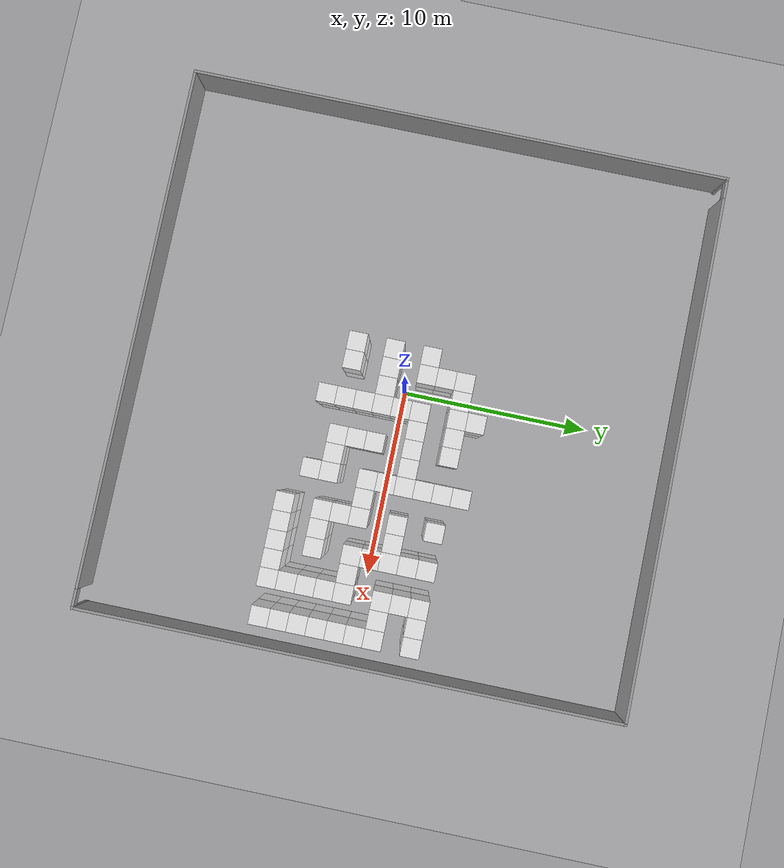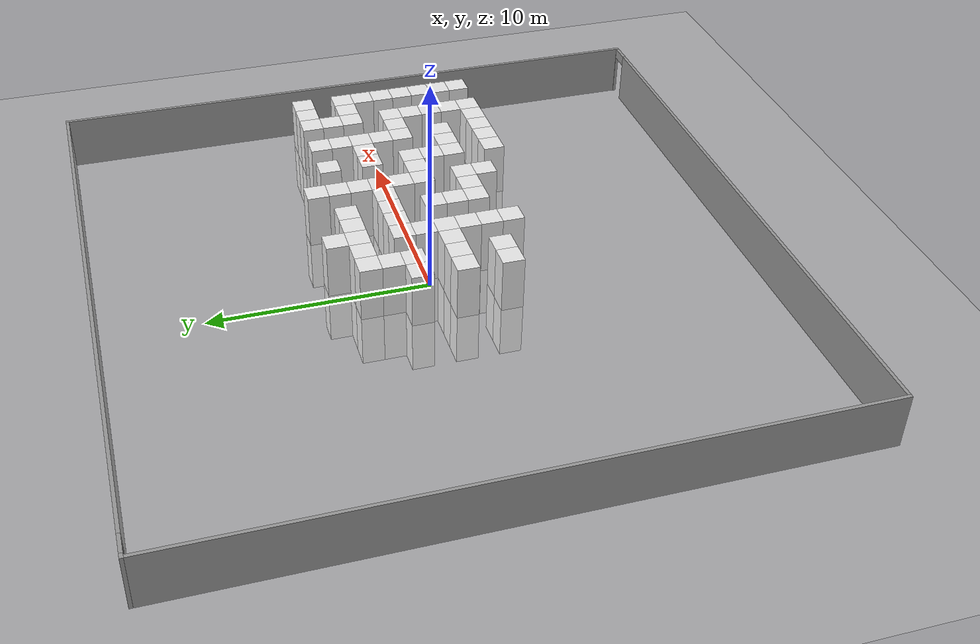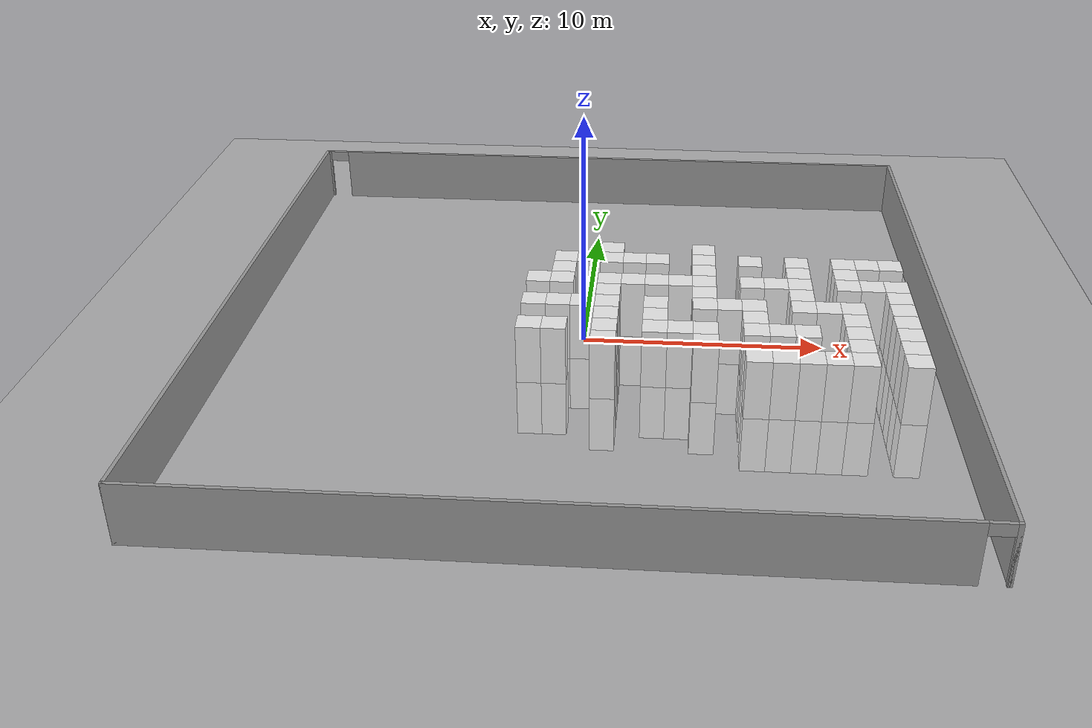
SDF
<sdf version="1.6">
 <world name="default">
  <model name="ground_plane">
   <static>1</static>
   <link name="link">
    <collision name="collision">
     <geometry><plane><normal>0 0 1</normal><size>100 100</size></plane></geometry>
     <surface><friction><ode><mu>100</mu><mu2>50</mu2></ode></friction></surface>
    </collision>
    <visual name="visual">
     <cast_shadows>0</cast_shadows>
     <geometry><plane><normal>0 0 1</normal><size>100 100</size></plane></geometry>
     <material>
      <script><uri>file://media/materials/scripts/gazebo.material</uri><name>Gazebo/Grey</name></script>
     </material>
    </visual>
   </link>
  </model>
  <model name="Unit_box_1_4">
   <pose>1 4 0 0 0 0</pose>
   <link name="Unit_box_1_4_collision">
    <collision name="collision"><geometry><box><size>1 1 5</size></box></geometry></collision>
    <visual name="Unit_box_1_4_visual">
     <geometry><box><size>1 1 5</size></box></geometry>
     <material>
      <script><name>Gazebo/White</name><uri>file://media/materials/scripts/gazebo.material</uri></script>
     </material>
    </visual>
   </link>
   <static>1</static>
  </model>
  <model name="Unit_box_5_4">
   <pose>5 4 0 0 0 0</pose>
   <link name="Unit_box_5_4_collision">
    <collision name="collision"><geometry><box><size>1 1 5</size></box></geometry></collision>
    <visual name="Unit_box_5_4_visual">
     <geometry><box><size>1 1 5</size></box></geometry>
     <material>
      <script><name>Gazebo/White</name><uri>file://media/materials/scripts/gazebo.material</uri></script>
     </material>
    </visual>
   </link>
   <static>1</static>
  </model>
  <model name="Unit_box_-1_3">
   <pose>-1 3 0 0 0 0</pose>
   <link name="Unit_box_-1_3_collision">
    <collision name="collision"><geometry><box><size>1 1 5</size></box></geometry></collision>
    <visual name="Unit_box_-1_3_visual">
     <geometry><box><size>1 1 5</size></box></geometry>
     <material>
      <script><name>Gazebo/White</name><uri>file://media/materials/scripts/gazebo.material</uri></script>
     </material>
    </visual>
   </link>
   <static>1</static>
  </model>
  <model name="Unit_box_0_3">
   <pose>0 3 0 0 0 0</pose>
   <link name="Unit_box_0_3_collision">
    <collision name="collision"><geometry><box><size>1 1 5</size></box></geometry></collision>
    <visual name="Unit_box_0_3_visual">
     <geometry><box><size>1 1 5</size></box></geometry>
     <material>
      <script><name>Gazebo/White</name><uri>file://media/materials/scripts/gazebo.material</uri></script>
     </material>
    </visual>
   </link>
   <static>1</static>
  </model>
  <model name="Unit_box_1_3">
   <pose>1 3 0 0 0 0</pose>
   <link name="Unit_box_1_3_collision">
    <collision name="collision"><geometry><box><size>1 1 5</size></box></geometry></collision>
    <visual name="Unit_box_1_3_visual">
     <geometry><box><size>1 1 5</size></box></geometry>
     <material>
      <script><name>Gazebo/White</name><uri>file://media/materials/scripts/gazebo.material</uri></script>
     </material>
    </visual>
   </link>
   <static>1</static>
  </model>
  <model name="Unit_box_2_3">
   <pose>2 3 0 0 0 0</pose>
   <link name="Unit_box_2_3_collision">
    <collision name="collision"><geometry><box><size>1 1 5</size></box></geometry></collision>
    <visual name="Unit_box_2_3_visual">
     <geometry><box><size>1 1 5</size></box></geometry>
     <material>
      <script><name>Gazebo/White</name><uri>file://media/materials/scripts/gazebo.material</uri></script>
     </material>
    </visual>
   </link>
   <static>1</static>
  </model>
  <model name="Unit_box_3_3">
   <pose>3 3 0 0 0 0</pose>
   <link name="Unit_box_3_3_collision">
    <collision name="collision"><geometry><box><size>1 1 5</size></box></geometry></collision>
    <visual name="Unit_box_3_3_visual">
     <geometry><box><size>1 1 5</size></box></geometry>
     <material>
      <script><name>Gazebo/White</name><uri>file://media/materials/scripts/gazebo.material</uri></script>
     </material>
    </visual>
   </link>
   <static>1</static>
  </model>
  <model name="Unit_box_5_3">
   <pose>5 3 0 0 0 0</pose>
   <link name="Unit_box_5_3_collision">
    <collision name="collision"><geometry><box><size>1 1 5</size></box></geometry></collision>
    <visual name="Unit_box_5_3_visual">
     <geometry><box><size>1 1 5</size></box></geometry>
     <material>
      <script><name>Gazebo/White</name><uri>file://media/materials/scripts/gazebo.material</uri></script>
     </material>
    </visual>
   </link>
   <static>1</static>
  </model>
  <model name="Unit_box_7_3">
   <pose>7 3 0 0 0 0</pose>
   <link name="Unit_box_7_3_collision">
    <collision name="collision"><geometry><box><size>1 1 5</size></box></geometry></collision>
    <visual name="Unit_box_7_3_visual">
     <geometry><box><size>1 1 5</size></box></geometry>
     <material>
      <script><name>Gazebo/White</name><uri>file://media/materials/scripts/gazebo.material</uri></script>
     </material>
    </visual>
   </link>
   <static>1</static>
  </model>
  <model name="Unit_box_9_3">
   <pose>9 3 0 0 0 0</pose>
   <link name="Unit_box_9_3_collision">
    <collision name="collision"><geometry><box><size>1 1 5</size></box></geometry></collision>
    <visual name="Unit_box_9_3_visual">
     <geometry><box><size>1 1 5</size></box></geometry>
     <material>
      <script><name>Gazebo/White</name><uri>file://media/materials/scripts/gazebo.material</uri></script>
     </material>
    </visual>
   </link>
   <static>1</static>
  </model>
  <model name="Unit_box_11_3">
   <pose>11 3 0 0 0 0</pose>
   <link name="Unit_box_11_3_collision">
    <collision name="collision"><geometry><box><size>1 1 5</size></box></geometry></collision>
    <visual name="Unit_box_11_3_visual">
     <geometry><box><size>1 1 5</size></box></geometry>
     <material>
      <script><name>Gazebo/White</name><uri>file://media/materials/scripts/gazebo.material</uri></script>
     </material>
    </visual>
   </link>
   <static>1</static>
  </model>
  <model name="Unit_box_12_3">
   <pose>12 3 0 0 0 0</pose>
   <link name="Unit_box_12_3_collision">
    <collision name="collision"><geometry><box><size>1 1 5</size></box></geometry></collision>
    <visual name="Unit_box_12_3_visual">
     <geometry><box><size>1 1 5</size></box></geometry>
     <material>
      <script><name>Gazebo/White</name><uri>file://media/materials/scripts/gazebo.material</uri></script>
     </material>
    </visual>
   </link>
   <static>1</static>
  </model>
  <model name="Unit_box_13_3">
   <pose>13 3 0 0 0 0</pose>
   <link name="Unit_box_13_3_collision">
    <collision name="collision"><geometry><box><size>1 1 5</size></box></geometry></collision>
    <visual name="Unit_box_13_3_visual">
     <geometry><box><size>1 1 5</size></box></geometry>
     <material>
      <script><name>Gazebo/White</name><uri>file://media/materials/scripts/gazebo.material</uri></script>
     </material>
    </visual>
   </link>
   <static>1</static>
  </model>
  <model name="Unit_box_-1_2">
   <pose>-1 2 0 0 0 0</pose>
   <link name="Unit_box_-1_2_collision">
    <collision name="collision"><geometry><box><size>1 1 5</size></box></geometry></collision>
    <visual name="Unit_box_-1_2_visual">
     <geometry><box><size>1 1 5</size></box></geometry>
     <material>
      <script><name>Gazebo/White</name><uri>file://media/materials/scripts/gazebo.material</uri></script>
     </material>
    </visual>
   </link>
   <static>1</static>
  </model>
  <model name="Unit_box_5_2">
   <pose>5 2 0 0 0 0</pose>
   <link name="Unit_box_5_2_collision">
    <collision name="collision"><geometry><box><size>1 1 5</size></box></geometry></collision>
    <visual name="Unit_box_5_2_visual">
     <geometry><box><size>1 1 5</size></box></geometry>
     <material>
      <script><name>Gazebo/White</name><uri>file://media/materials/scripts/gazebo.material</uri></script>
     </material>
    </visual>
   </link>
   <static>1</static>
  </model>
  <model name="Unit_box_9_2">
   <pose>9 2 0 0 0 0</pose>
   <link name="Unit_box_9_2_collision">
    <collision name="collision"><geometry><box><size>1 1 5</size></box></geometry></collision>
    <visual name="Unit_box_9_2_visual">
     <geometry><box><size>1 1 5</size></box></geometry>
     <material>
      <script><name>Gazebo/White</name><uri>file://media/materials/scripts/gazebo.material</uri></script>
     </material>
    </visual>
   </link>
   <static>1</static>
  </model>
  <model name="Unit_box_11_2">
   <pose>11 2 0 0 0 0</pose>
   <link name="Unit_box_11_2_collision">
    <collision name="collision"><geometry><box><size>1 1 5</size></box></geometry></collision>
    <visual name="Unit_box_11_2_visual">
     <geometry><box><size>1 1 5</size></box></geometry>
     <material>
      <script><name>Gazebo/White</name><uri>file://media/materials/scripts/gazebo.material</uri></script>
     </material>
    </visual>
   </link>
   <static>1</static>
  </model>
  <model name="Unit_box_-2_1">
   <pose>-2 1 0 0 0 0</pose>
   <link name="Unit_box_-2_1_collision">
    <collision name="collision"><geometry><box><size>1 1 5</size></box></geometry></collision>
    <visual name="Unit_box_-2_1_visual">
     <geometry><box><size>1 1 5</size></box></geometry>
     <material>
      <script><name>Gazebo/White</name><uri>file://media/materials/scripts/gazebo.material</uri></script>
     </material>
    </visual>
   </link>
   <static>1</static>
  </model>
  <model name="Unit_box_-1_1">
   <pose>-1 1 0 0 0 0</pose>
   <link name="Unit_box_-1_1_collision">
    <collision name="collision"><geometry><box><size>1 1 5</size></box></geometry></collision>
    <visual name="Unit_box_-1_1_visual">
     <geometry><box><size>1 1 5</size></box></geometry>
     <material>
      <script><name>Gazebo/White</name><uri>file://media/materials/scripts/gazebo.material</uri></script>
     </material>
    </visual>
   </link>
   <static>1</static>
  </model>
  <model name="Unit_box_1_1">
   <pose>1 1 0 0 0 0</pose>
   <link name="Unit_box_1_1_collision">
    <collision name="collision"><geometry><box><size>1 1 5</size></box></geometry></collision>
    <visual name="Unit_box_1_1_visual">
     <geometry><box><size>1 1 5</size></box></geometry>
     <material>
      <script><name>Gazebo/White</name><uri>file://media/materials/scripts/gazebo.material</uri></script>
     </material>
    </visual>
   </link>
   <static>1</static>
  </model>
  <model name="Unit_box_2_1">
   <pose>2 1 0 0 0 0</pose>
   <link name="Unit_box_2_1_collision">
    <collision name="collision"><geometry><box><size>1 1 5</size></box></geometry></collision>
    <visual name="Unit_box_2_1_visual">
     <geometry><box><size>1 1 5</size></box></geometry>
     <material>
      <script><name>Gazebo/White</name><uri>file://media/materials/scripts/gazebo.material</uri></script>
     </material>
    </visual>
   </link>
   <static>1</static>
  </model>
  <model name="Unit_box_3_1">
   <pose>3 1 0 0 0 0</pose>
   <link name="Unit_box_3_1_collision">
    <collision name="collision"><geometry><box><size>1 1 5</size></box></geometry></collision>
    <visual name="Unit_box_3_1_visual">
     <geometry><box><size>1 1 5</size></box></geometry>
     <material>
      <script><name>Gazebo/White</name><uri>file://media/materials/scripts/gazebo.material</uri></script>
     </material>
    </visual>
   </link>
   <static>1</static>
  </model>
  <model name="Unit_box_4_1">
   <pose>4 1 0 0 0 0</pose>
   <link name="Unit_box_4_1_collision">
    <collision name="collision"><geometry><box><size>1 1 5</size></box></geometry></collision>
    <visual name="Unit_box_4_1_visual">
     <geometry><box><size>1 1 5</size></box></geometry>
     <material>
      <script><name>Gazebo/White</name><uri>file://media/materials/scripts/gazebo.material</uri></script>
     </material>
    </visual>
   </link>
   <static>1</static>
  </model>
  <model name="Unit_box_5_1">
   <pose>5 1 0 0 0 0</pose>
   <link name="Unit_box_5_1_collision">
    <collision name="collision"><geometry><box><size>1 1 5</size></box></geometry></collision>
    <visual name="Unit_box_5_1_visual">
     <geometry><box><size>1 1 5</size></box></geometry>
     <material>
      <script><name>Gazebo/White</name><uri>file://media/materials/scripts/gazebo.material</uri></script>
     </material>
    </visual>
   </link>
   <static>1</static>
  </model>
  <model name="Unit_box_7_1">
   <pose>7 1 0 0 0 0</pose>
   <link name="Unit_box_7_1_collision">
    <collision name="collision"><geometry><box><size>1 1 5</size></box></geometry></collision>
    <visual name="Unit_box_7_1_visual">
     <geometry><box><size>1 1 5</size></box></geometry>
     <material>
      <script><name>Gazebo/White</name><uri>file://media/materials/scripts/gazebo.material</uri></script>
     </material>
    </visual>
   </link>
   <static>1</static>
  </model>
  <model name="Unit_box_8_1">
   <pose>8 1 0 0 0 0</pose>
   <link name="Unit_box_8_1_collision">
    <collision name="collision"><geometry><box><size>1 1 5</size></box></geometry></collision>
    <visual name="Unit_box_8_1_visual">
     <geometry><box><size>1 1 5</size></box></geometry>
     <material>
      <script><name>Gazebo/White</name><uri>file://media/materials/scripts/gazebo.material</uri></script>
     </material>
    </visual>
   </link>
   <static>1</static>
  </model>
  <model name="Unit_box_9_1">
   <pose>9 1 0 0 0 0</pose>
   <link name="Unit_box_9_1_collision">
    <collision name="collision"><geometry><box><size>1 1 5</size></box></geometry></collision>
    <visual name="Unit_box_9_1_visual">
     <geometry><box><size>1 1 5</size></box></geometry>
     <material>
      <script><name>Gazebo/White</name><uri>file://media/materials/scripts/gazebo.material</uri></script>
     </material>
    </visual>
   </link>
   <static>1</static>
  </model>
  <model name="Unit_box_11_1">
   <pose>11 1 0 0 0 0</pose>
   <link name="Unit_box_11_1_collision">
    <collision name="collision"><geometry><box><size>1 1 5</size></box></geometry></collision>
    <visual name="Unit_box_11_1_visual">
     <geometry><box><size>1 1 5</size></box></geometry>
     <material>
      <script><name>Gazebo/White</name><uri>file://media/materials/scripts/gazebo.material</uri></script>
     </material>
    </visual>
   </link>
   <static>1</static>
  </model>
  <model name="Unit_box_12_1">
   <pose>12 1 0 0 0 0</pose>
   <link name="Unit_box_12_1_collision">
    <collision name="collision"><geometry><box><size>1 1 5</size></box></geometry></collision>
    <visual name="Unit_box_12_1_visual">
     <geometry><box><size>1 1 5</size></box></geometry>
     <material>
      <script><name>Gazebo/White</name><uri>file://media/materials/scripts/gazebo.material</uri></script>
     </material>
    </visual>
   </link>
   <static>1</static>
  </model>
  <model name="Unit_box_13_1">
   <pose>13 1 0 0 0 0</pose>
   <link name="Unit_box_13_1_collision">
    <collision name="collision"><geometry><box><size>1 1 5</size></box></geometry></collision>
    <visual name="Unit_box_13_1_visual">
     <geometry><box><size>1 1 5</size></box></geometry>
     <material>
      <script><name>Gazebo/White</name><uri>file://media/materials/scripts/gazebo.material</uri></script>
     </material>
    </visual>
   </link>
   <static>1</static>
  </model>
  <model name="Unit_box_1_0">
   <pose>1 0 0 0 0 0</pose>
   <link name="Unit_box_1_0_collision">
    <collision name="collision"><geometry><box><size>1 1 5</size></box></geometry></collision>
    <visual name="Unit_box_1_0_visual">
     <geometry><box><size>1 1 5</size></box></geometry>
     <material>
      <script><name>Gazebo/White</name><uri>file://media/materials/scripts/gazebo.material</uri></script>
     </material>
    </visual>
   </link>
   <static>1</static>
  </model>
  <model name="Unit_box_5_0">
   <pose>5 0 0 0 0 0</pose>
   <link name="Unit_box_5_0_collision">
    <collision name="collision"><geometry><box><size>1 1 5</size></box></geometry></collision>
    <visual name="Unit_box_5_0_visual">
     <geometry><box><size>1 1 5</size></box></geometry>
     <material>
      <script><name>Gazebo/White</name><uri>file://media/materials/scripts/gazebo.material</uri></script>
     </material>
    </visual>
   </link>
   <static>1</static>
  </model>
  <model name="Unit_box_9_0">
   <pose>9 0 0 0 0 0</pose>
   <link name="Unit_box_9_0_collision">
    <collision name="collision"><geometry><box><size>1 1 5</size></box></geometry></collision>
    <visual name="Unit_box_9_0_visual">
     <geometry><box><size>1 1 5</size></box></geometry>
     <material>
      <script><name>Gazebo/White</name><uri>file://media/materials/scripts/gazebo.material</uri></script>
     </material>
    </visual>
   </link>
   <static>1</static>
  </model>
  <model name="Unit_box_13_0">
   <pose>13 0 0 0 0 0</pose>
   <link name="Unit_box_13_0_collision">
    <collision name="collision"><geometry><box><size>1 1 5</size></box></geometry></collision>
    <visual name="Unit_box_13_0_visual">
     <geometry><box><size>1 1 5</size></box></geometry>
     <material>
      <script><name>Gazebo/White</name><uri>file://media/materials/scripts/gazebo.material</uri></script>
     </material>
    </visual>
   </link>
   <static>1</static>
  </model>
  <model name="Unit_box_-2_-1">
   <pose>-2 -1 0 0 0 0</pose>
   <link name="Unit_box_-2_-1_collision">
    <collision name="collision"><geometry><box><size>1 1 5</size></box></geometry></collision>
    <visual name="Unit_box_-2_-1_visual">
     <geometry><box><size>1 1 5</size></box></geometry>
     <material>
      <script><name>Gazebo/White</name><uri>file://media/materials/scripts/gazebo.material</uri></script>
     </material>
    </visual>
   </link>
   <static>1</static>
  </model>
  <model name="Unit_box_-1_-1">
   <pose>-1 -1 0 0 0 0</pose>
   <link name="Unit_box_-1_-1_collision">
    <collision name="collision"><geometry><box><size>1 1 5</size></box></geometry></collision>
    <visual name="Unit_box_-1_-1_visual">
     <geometry><box><size>1 1 5</size></box></geometry>
     <material>
      <script><name>Gazebo/White</name><uri>file://media/materials/scripts/gazebo.material</uri></script>
     </material>
    </visual>
   </link>
   <static>1</static>
  </model>
  <model name="Unit_box_0_-1">
   <pose>0 -1 0 0 0 0</pose>
   <link name="Unit_box_0_-1_collision">
    <collision name="collision"><geometry><box><size>1 1 5</size></box></geometry></collision>
    <visual name="Unit_box_0_-1_visual">
     <geometry><box><size>1 1 5</size></box></geometry>
     <material>
      <script><name>Gazebo/White</name><uri>file://media/materials/scripts/gazebo.material</uri></script>
     </material>
    </visual>
   </link>
   <static>1</static>
  </model>
  <model name="Unit_box_1_-1">
   <pose>1 -1 0 0 0 0</pose>
   <link name="Unit_box_1_-1_collision">
    <collision name="collision"><geometry><box><size>1 1 5</size></box></geometry></collision>
    <visual name="Unit_box_1_-1_visual">
     <geometry><box><size>1 1 5</size></box></geometry>
     <material>
      <script><name>Gazebo/White</name><uri>file://media/materials/scripts/gazebo.material</uri></script>
     </material>
    </visual>
   </link>
   <static>1</static>
  </model>
  <model name="Unit_box_3_-1">
   <pose>3 -1 0 0 0 0</pose>
   <link name="Unit_box_3_-1_collision">
    <collision name="collision"><geometry><box><size>1 1 5</size></box></geometry></collision>
    <visual name="Unit_box_3_-1_visual">
     <geometry><box><size>1 1 5</size></box></geometry>
     <material>
      <script><name>Gazebo/White</name><uri>file://media/materials/scripts/gazebo.material</uri></script>
     </material>
    </visual>
   </link>
   <static>1</static>
  </model>
  <model name="Unit_box_5_-1">
   <pose>5 -1 0 0 0 0</pose>
   <link name="Unit_box_5_-1_collision">
    <collision name="collision"><geometry><box><size>1 1 5</size></box></geometry></collision>
    <visual name="Unit_box_5_-1_visual">
     <geometry><box><size>1 1 5</size></box></geometry>
     <material>
      <script><name>Gazebo/White</name><uri>file://media/materials/scripts/gazebo.material</uri></script>
     </material>
    </visual>
   </link>
   <static>1</static>
  </model>
  <model name="Unit_box_6_-1">
   <pose>6 -1 0 0 0 0</pose>
   <link name="Unit_box_6_-1_collision">
    <collision name="collision"><geometry><box><size>1 1 5</size></box></geometry></collision>
    <visual name="Unit_box_6_-1_visual">
     <geometry><box><size>1 1 5</size></box></geometry>
     <material>
      <script><name>Gazebo/White</name><uri>file://media/materials/scripts/gazebo.material</uri></script>
     </material>
    </visual>
   </link>
   <static>1</static>
  </model>
  <model name="Unit_box_7_-1">
   <pose>7 -1 0 0 0 0</pose>
   <link name="Unit_box_7_-1_collision">
    <collision name="collision"><geometry><box><size>1 1 5</size></box></geometry></collision>
    <visual name="Unit_box_7_-1_visual">
     <geometry><box><size>1 1 5</size></box></geometry>
     <material>
      <script><name>Gazebo/White</name><uri>file://media/materials/scripts/gazebo.material</uri></script>
     </material>
    </visual>
   </link>
   <static>1</static>
  </model>
  <model name="Unit_box_9_-1">
   <pose>9 -1 0 0 0 0</pose>
   <link name="Unit_box_9_-1_collision">
    <collision name="collision"><geometry><box><size>1 1 5</size></box></geometry></collision>
    <visual name="Unit_box_9_-1_visual">
     <geometry><box><size>1 1 5</size></box></geometry>
     <material>
      <script><name>Gazebo/White</name><uri>file://media/materials/scripts/gazebo.material</uri></script>
     </material>
    </visual>
   </link>
   <static>1</static>
  </model>
  <model name="Unit_box_10_-1">
   <pose>10 -1 0 0 0 0</pose>
   <link name="Unit_box_10_-1_collision">
    <collision name="collision"><geometry><box><size>1 1 5</size></box></geometry></collision>
    <visual name="Unit_box_10_-1_visual">
     <geometry><box><size>1 1 5</size></box></geometry>
     <material>
      <script><name>Gazebo/White</name><uri>file://media/materials/scripts/gazebo.material</uri></script>
     </material>
    </visual>
   </link>
   <static>1</static>
  </model>
  <model name="Unit_box_11_-1">
   <pose>11 -1 0 0 0 0</pose>
   <link name="Unit_box_11_-1_collision">
    <collision name="collision"><geometry><box><size>1 1 5</size></box></geometry></collision>
    <visual name="Unit_box_11_-1_visual">
     <geometry><box><size>1 1 5</size></box></geometry>
     <material>
      <script><name>Gazebo/White</name><uri>file://media/materials/scripts/gazebo.material</uri></script>
     </material>
    </visual>
   </link>
   <static>1</static>
  </model>
  <model name="Unit_box_13_-1">
   <pose>13 -1 0 0 0 0</pose>
   <link name="Unit_box_13_-1_collision">
    <collision name="collision"><geometry><box><size>1 1 5</size></box></geometry></collision>
    <visual name="Unit_box_13_-1_visual">
     <geometry><box><size>1 1 5</size></box></geometry>
     <material>
      <script><name>Gazebo/White</name><uri>file://media/materials/scripts/gazebo.material</uri></script>
     </material>
    </visual>
   </link>
   <static>1</static>
  </model>
  <model name="Unit_box_1_-2">
   <pose>1 -2 0 0 0 0</pose>
   <link name="Unit_box_1_-2_collision">
    <collision name="collision"><geometry><box><size>1 1 5</size></box></geometry></collision>
    <visual name="Unit_box_1_-2_visual">
     <geometry><box><size>1 1 5</size></box></geometry>
     <material>
      <script><name>Gazebo/White</name><uri>file://media/materials/scripts/gazebo.material</uri></script>
     </material>
    </visual>
   </link>
   <static>1</static>
  </model>
  <model name="Unit_box_3_-2">
   <pose>3 -2 0 0 0 0</pose>
   <link name="Unit_box_3_-2_collision">
    <collision name="collision"><geometry><box><size>1 1 5</size></box></geometry></collision>
    <visual name="Unit_box_3_-2_visual">
     <geometry><box><size>1 1 5</size></box></geometry>
     <material>
      <script><name>Gazebo/White</name><uri>file://media/materials/scripts/gazebo.material</uri></script>
     </material>
    </visual>
   </link>
   <static>1</static>
  </model>
  <model name="Unit_box_7_-2">
   <pose>7 -2 0 0 0 0</pose>
   <link name="Unit_box_7_-2_collision">
    <collision name="collision"><geometry><box><size>1 1 5</size></box></geometry></collision>
    <visual name="Unit_box_7_-2_visual">
     <geometry><box><size>1 1 5</size></box></geometry>
     <material>
      <script><name>Gazebo/White</name><uri>file://media/materials/scripts/gazebo.material</uri></script>
     </material>
    </visual>
   </link>
   <static>1</static>
  </model>
  <model name="Unit_box_11_-2">
   <pose>11 -2 0 0 0 0</pose>
   <link name="Unit_box_11_-2_collision">
    <collision name="collision"><geometry><box><size>1 1 5</size></box></geometry></collision>
    <visual name="Unit_box_11_-2_visual">
     <geometry><box><size>1 1 5</size></box></geometry>
     <material>
      <script><name>Gazebo/White</name><uri>file://media/materials/scripts/gazebo.material</uri></script>
     </material>
    </visual>
   </link>
   <static>1</static>
  </model>
  <model name="Unit_box_13_-2">
   <pose>13 -2 0 0 0 0</pose>
   <link name="Unit_box_13_-2_collision">
    <collision name="collision"><geometry><box><size>1 1 5</size></box></geometry></collision>
    <visual name="Unit_box_13_-2_visual">
     <geometry><box><size>1 1 5</size></box></geometry>
     <material>
      <script><name>Gazebo/White</name><uri>file://media/materials/scripts/gazebo.material</uri></script>
     </material>
    </visual>
   </link>
   <static>1</static>
  </model>
  <model name="Unit_box_-2_-3">
   <pose>-2 -3 0 0 0 0</pose>
   <link name="Unit_box_-2_-3_collision">
    <collision name="collision"><geometry><box><size>1 1 5</size></box></geometry></collision>
    <visual name="Unit_box_-2_-3_visual">
     <geometry><box><size>1 1 5</size></box></geometry>
     <material>
      <script><name>Gazebo/White</name><uri>file://media/materials/scripts/gazebo.material</uri></script>
     </material>
    </visual>
   </link>
   <static>1</static>
  </model>
  <model name="Unit_box_-1_-3">
   <pose>-1 -3 0 0 0 0</pose>
   <link name="Unit_box_-1_-3_collision">
    <collision name="collision"><geometry><box><size>1 1 5</size></box></geometry></collision>
    <visual name="Unit_box_-1_-3_visual">
     <geometry><box><size>1 1 5</size></box></geometry>
     <material>
      <script><name>Gazebo/White</name><uri>file://media/materials/scripts/gazebo.material</uri></script>
     </material>
    </visual>
   </link>
   <static>1</static>
  </model>
  <model name="Unit_box_1_-3">
   <pose>1 -3 0 0 0 0</pose>
   <link name="Unit_box_1_-3_collision">
    <collision name="collision"><geometry><box><size>1 1 5</size></box></geometry></collision>
    <visual name="Unit_box_1_-3_visual">
     <geometry><box><size>1 1 5</size></box></geometry>
     <material>
      <script><name>Gazebo/White</name><uri>file://media/materials/scripts/gazebo.material</uri></script>
     </material>
    </visual>
   </link>
   <static>1</static>
  </model>
  <model name="Unit_box_3_-3">
   <pose>3 -3 0 0 0 0</pose>
   <link name="Unit_box_3_-3_collision">
    <collision name="collision"><geometry><box><size>1 1 5</size></box></geometry></collision>
    <visual name="Unit_box_3_-3_visual">
     <geometry><box><size>1 1 5</size></box></geometry>
     <material>
      <script><name>Gazebo/White</name><uri>file://media/materials/scripts/gazebo.material</uri></script>
     </material>
    </visual>
   </link>
   <static>1</static>
  </model>
  <model name="Unit_box_4_-3">
   <pose>4 -3 0 0 0 0</pose>
   <link name="Unit_box_4_-3_collision">
    <collision name="collision"><geometry><box><size>1 1 5</size></box></geometry></collision>
    <visual name="Unit_box_4_-3_visual">
     <geometry><box><size>1 1 5</size></box></geometry>
     <material>
      <script><name>Gazebo/White</name><uri>file://media/materials/scripts/gazebo.material</uri></script>
     </material>
    </visual>
   </link>
   <static>1</static>
  </model>
  <model name="Unit_box_5_-3">
   <pose>5 -3 0 0 0 0</pose>
   <link name="Unit_box_5_-3_collision">
    <collision name="collision"><geometry><box><size>1 1 5</size></box></geometry></collision>
    <visual name="Unit_box_5_-3_visual">
     <geometry><box><size>1 1 5</size></box></geometry>
     <material>
      <script><name>Gazebo/White</name><uri>file://media/materials/scripts/gazebo.material</uri></script>
     </material>
    </visual>
   </link>
   <static>1</static>
  </model>
  <model name="Unit_box_7_-3">
   <pose>7 -3 0 0 0 0</pose>
   <link name="Unit_box_7_-3_collision">
    <collision name="collision"><geometry><box><size>1 1 5</size></box></geometry></collision>
    <visual name="Unit_box_7_-3_visual">
     <geometry><box><size>1 1 5</size></box></geometry>
     <material>
      <script><name>Gazebo/White</name><uri>file://media/materials/scripts/gazebo.material</uri></script>
     </material>
    </visual>
   </link>
   <static>1</static>
  </model>
  <model name="Unit_box_8_-3">
   <pose>8 -3 0 0 0 0</pose>
   <link name="Unit_box_8_-3_collision">
    <collision name="collision"><geometry><box><size>1 1 5</size></box></geometry></collision>
    <visual name="Unit_box_8_-3_visual">
     <geometry><box><size>1 1 5</size></box></geometry>
     <material>
      <script><name>Gazebo/White</name><uri>file://media/materials/scripts/gazebo.material</uri></script>
     </material>
    </visual>
   </link>
   <static>1</static>
  </model>
  <model name="Unit_box_9_-3">
   <pose>9 -3 0 0 0 0</pose>
   <link name="Unit_box_9_-3_collision">
    <collision name="collision"><geometry><box><size>1 1 5</size></box></geometry></collision>
    <visual name="Unit_box_9_-3_visual">
     <geometry><box><size>1 1 5</size></box></geometry>
     <material>
      <script><name>Gazebo/White</name><uri>file://media/materials/scripts/gazebo.material</uri></script>
     </material>
    </visual>
   </link>
   <static>1</static>
  </model>
  <model name="Unit_box_11_-3">
   <pose>11 -3 0 0 0 0</pose>
   <link name="Unit_box_11_-3_collision">
    <collision name="collision"><geometry><box><size>1 1 5</size></box></geometry></collision>
    <visual name="Unit_box_11_-3_visual">
     <geometry><box><size>1 1 5</size></box></geometry>
     <material>
      <script><name>Gazebo/White</name><uri>file://media/materials/scripts/gazebo.material</uri></script>
     </material>
    </visual>
   </link>
   <static>1</static>
  </model>
  <model name="Unit_box_13_-3">
   <pose>13 -3 0 0 0 0</pose>
   <link name="Unit_box_13_-3_collision">
    <collision name="collision"><geometry><box><size>1 1 5</size></box></geometry></collision>
    <visual name="Unit_box_13_-3_visual">
     <geometry><box><size>1 1 5</size></box></geometry>
     <material>
      <script><name>Gazebo/White</name><uri>file://media/materials/scripts/gazebo.material</uri></script>
     </material>
    </visual>
   </link>
   <static>1</static>
  </model>
  <model name="Unit_box_1_-4">
   <pose>1 -4 0 0 0 0</pose>
   <link name="Unit_box_1_-4_collision">
    <collision name="collision"><geometry><box><size>1 1 5</size></box></geometry></collision>
    <visual name="Unit_box_1_-4_visual">
     <geometry><box><size>1 1 5</size></box></geometry>
     <material>
      <script><name>Gazebo/White</name><uri>file://media/materials/scripts/gazebo.material</uri></script>
     </material>
    </visual>
   </link>
   <static>1</static>
  </model>
  <model name="Unit_box_5_-4">
   <pose>5 -4 0 0 0 0</pose>
   <link name="Unit_box_5_-4_collision">
    <collision name="collision"><geometry><box><size>1 1 5</size></box></geometry></collision>
    <visual name="Unit_box_5_-4_visual">
     <geometry><box><size>1 1 5</size></box></geometry>
     <material>
      <script><name>Gazebo/White</name><uri>file://media/materials/scripts/gazebo.material</uri></script>
     </material>
    </visual>
   </link>
   <static>1</static>
  </model>
  <model name="Unit_box_11_-4">
   <pose>11 -4 0 0 0 0</pose>
   <link name="Unit_box_11_-4_collision">
    <collision name="collision"><geometry><box><size>1 1 5</size></box></geometry></collision>
    <visual name="Unit_box_11_-4_visual">
     <geometry><box><size>1 1 5</size></box></geometry>
     <material>
      <script><name>Gazebo/White</name><uri>file://media/materials/scripts/gazebo.material</uri></script>
     </material>
    </visual>
   </link>
   <static>1</static>
  </model>
  <model name="Unit_box_13_-4">
   <pose>13 -4 0 0 0 0</pose>
   <link name="Unit_box_13_-4_collision">
    <collision name="collision"><geometry><box><size>1 1 5</size></box></geometry></collision>
    <visual name="Unit_box_13_-4_visual">
     <geometry><box><size>1 1 5</size></box></geometry>
     <material>
      <script><name>Gazebo/White</name><uri>file://media/materials/scripts/gazebo.material</uri></script>
     </material>
    </visual>
   </link>
   <static>1</static>
  </model>
  <model name="Unit_box_7_-5">
   <pose>7 -5 0 0 0 0</pose>
   <link name="Unit_box_7_-5_collision">
    <collision name="collision"><geometry><box><size>1 1 5</size></box></geometry></collision>
    <visual name="Unit_box_7_-5_visual">
     <geometry><box><size>1 1 5</size></box></geometry>
     <material>
      <script><name>Gazebo/White</name><uri>file://media/materials/scripts/gazebo.material</uri></script>
     </material>
    </visual>
   </link>
   <static>1</static>
  </model>
  <model name="Unit_box_8_-5">
   <pose>8 -5 0 0 0 0</pose>
   <link name="Unit_box_8_-5_collision">
    <collision name="collision"><geometry><box><size>1 1 5</size></box></geometry></collision>
    <visual name="Unit_box_8_-5_visual">
     <geometry><box><size>1 1 5</size></box></geometry>
     <material>
      <script><name>Gazebo/White</name><uri>file://media/materials/scripts/gazebo.material</uri></script>
     </material>
    </visual>
   </link>
   <static>1</static>
  </model>
  <model name="Unit_box_9_-5">
   <pose>9 -5 0 0 0 0</pose>
   <link name="Unit_box_9_-5_collision">
    <collision name="collision"><geometry><box><size>1 1 5</size></box></geometry></collision>
    <visual name="Unit_box_9_-5_visual">
     <geometry><box><size>1 1 5</size></box></geometry>
     <material>
      <script><name>Gazebo/White</name><uri>file://media/materials/scripts/gazebo.material</uri></script>
     </material>
    </visual>
   </link>
   <static>1</static>
  </model>
  <model name="Unit_box_10_-5">
   <pose>10 -5 0 0 0 0</pose>
   <link name="Unit_box_10_-5_collision">
    <collision name="collision"><geometry><box><size>1 1 5</size></box></geometry></collision>
    <visual name="Unit_box_10_-5_visual">
     <geometry><box><size>1 1 5</size></box></geometry>
     <material>
      <script><name>Gazebo/White</name><uri>file://media/materials/scripts/gazebo.material</uri></script>
     </material>
    </visual>
   </link>
   <static>1</static>
  </model>
  <model name="Unit_box_11_-5">
   <pose>11 -5 0 0 0 0</pose>
   <link name="Unit_box_11_-5_collision">
    <collision name="collision"><geometry><box><size>1 1 5</size></box></geometry></collision>
    <visual name="Unit_box_11_-5_visual">
     <geometry><box><size>1 1 5</size></box></geometry>
     <material>
      <script><name>Gazebo/White</name><uri>file://media/materials/scripts/gazebo.material</uri></script>
     </material>
    </visual>
   </link>
   <static>1</static>
  </model>
  <model name="Unit_box_13_-5">
   <pose>13 -5 0 0 0 0</pose>
   <link name="Unit_box_13_-5_collision">
    <collision name="collision"><geometry><box><size>1 1 5</size></box></geometry></collision>
    <visual name="Unit_box_13_-5_visual">
     <geometry><box><size>1 1 5</size></box></geometry>
     <material>
      <script><name>Gazebo/White</name><uri>file://media/materials/scripts/gazebo.material</uri></script>
     </material>
    </visual>
   </link>
   <static>1</static>
  </model>
  <model name="30x302">
   <link name="Wall_6">
    <collision name="Wall_6_Collision">
     <geometry><box><size>29.25 0.15 2.5</size></box></geometry>
     <pose>0 0 1.25 0 -0 0</pose>
    </collision>
    <visual name="Wall_6_Visual">
     <pose>0 0 1.25 0 -0 0</pose>
     <geometry><box><size>29.25 0.15 2.5</size></box></geometry>
     <material>
      <script><uri>file://media/materials/scripts/gazebo.material</uri><name>Gazebo/Grey</name></script>
      <ambient>1 1 1 1</ambient>
     </material>
    </visual>
    <pose>-14.55 0 0 0 0 -1.5708</pose>
   </link>
   <link name="Wall_7">
    <pose>0 -14.55 0 0 -0 0</pose>
    <visual name="Wall_7_Visual_0">
     <pose>-0.538033 0 1.25 0 -0 0</pose>
     <geometry><box><size>28.1739 0.15 2.5</size></box></geometry>
     <material>
      <script><uri>file://media/materials/scripts/gazebo.material</uri><name>Gazebo/Grey</name></script>
      <ambient>1 1 1 1</ambient>
     </material>
    </visual>
    <collision name="Wall_7_Collision_0">
     <geometry><box><size>28.1739 0.15 2.5</size></box></geometry>
     <pose>-0.538033 0 1.25 0 -0 0</pose>
    </collision>
    <visual name="Wall_7_Visual_1">
     <pose>14.537 0 1.25 0 -0 0</pose>
     <geometry><box><size>0.176065 0.15 2.5</size></box></geometry>
     <material>
      <script><uri>file://media/materials/scripts/gazebo.material</uri><name>Gazebo/Grey</name></script>
      <ambient>1 1 1 1</ambient>
     </material>
    </visual>
    <collision name="Wall_7_Collision_1">
     <geometry><box><size>0.176065 0.15 2.5</size></box></geometry>
     <pose>14.537 0 1.25 0 -0 0</pose>
    </collision>
    <visual name="Wall_7_Visual_2">
     <pose>13.9989 0 2.25 0 -0 0</pose>
     <geometry><box><size>0.9 0.15 0.5</size></box></geometry>
     <material>
      <script><uri>file://media/materials/scripts/gazebo.material</uri><name>Gazebo/Grey</name></script>
      <ambient>1 1 1 1</ambient>
     </material>
    </visual>
    <collision name="Wall_7_Collision_2">
     <geometry><box><size>0.9 0.15 0.5</size></box></geometry>
     <pose>13.9989 0 2.25 0 -0 0</pose>
    </collision>
   </link>
   <link name="Wall_8">
    <collision name="Wall_8_Collision">
     <geometry><box><size>29.25 0.15 2.5</size></box></geometry>
     <pose>0 0 1.25 0 -0 0</pose>
    </collision>
    <visual name="Wall_8_Visual">
     <pose>0 0 1.25 0 -0 0</pose>
     <geometry><box><size>29.25 0.15 2.5</size></box></geometry>
     <material>
      <script><uri>file://media/materials/scripts/gazebo.material</uri><name>Gazebo/Grey</name></script>
      <ambient>1 1 1 1</ambient>
     </material>
    </visual>
    <pose>14.55 0 0 0 -0 1.5708</pose>
   </link>
   <link name="Wall_9">
    <pose>0 14.55 0 0 -0 3.14159</pose>
    <visual name="Wall_9_Visual_0">
     <pose>-0.570139 0 1.25 0 -0 0</pose>
     <geometry><box><size>28.1097 0.15 2.5</size></box></geometry>
     <material>
      <script><uri>file://media/materials/scripts/gazebo.material</uri><name>Gazebo/Grey</name></script>
      <ambient>1 1 1 1</ambient>
     </material>
    </visual>
    <collision name="Wall_9_Collision_0">
     <geometry><box><size>28.1097 0.15 2.5</size></box></geometry>
     <pose>-0.570139 0 1.25 0 -0 0</pose>
    </collision>
    <visual name="Wall_9_Visual_1">
     <pose>14.5049 0 1.25 0 -0 0</pose>
     <geometry><box><size>0.240279 0.15 2.5</size></box></geometry>
     <material>
      <script><uri>file://media/materials/scripts/gazebo.material</uri><name>Gazebo/Grey</name></script>
      <ambient>1 1 1 1</ambient>
     </material>
    </visual>
    <collision name="Wall_9_Collision_1">
     <geometry><box><size>0.240279 0.15 2.5</size></box></geometry>
     <pose>14.5049 0 1.25 0 -0 0</pose>
    </collision>
    <visual name="Wall_9_Visual_2">
     <pose>13.9347 0 2.25 0 -0 0</pose>
     <geometry><box><size>0.9 0.15 0.5</size></box></geometry>
     <material>
      <script><uri>file://media/materials/scripts/gazebo.material</uri><name>Gazebo/Grey</name></script>
      <ambient>1 1 1 1</ambient>
     </material>
    </visual>
    <collision name="Wall_9_Collision_2">
     <geometry><box><size>0.9 0.15 0.5</size></box></geometry>
     <pose>13.9347 0 2.25 0 -0 0</pose>
    </collision>
   </link>
   <static>1</static>
  </model>
 </world>
</sdf>
